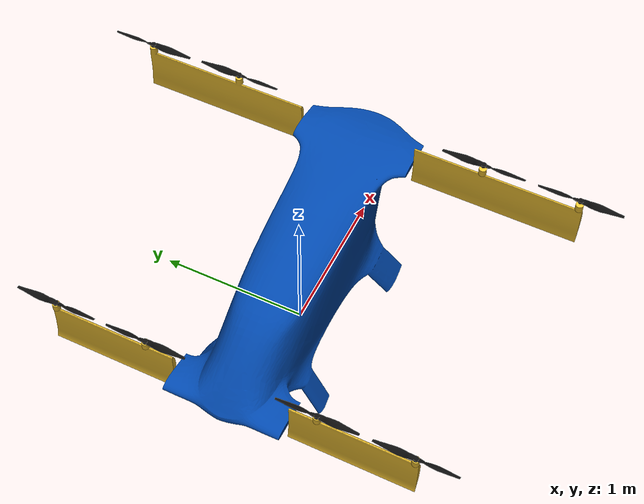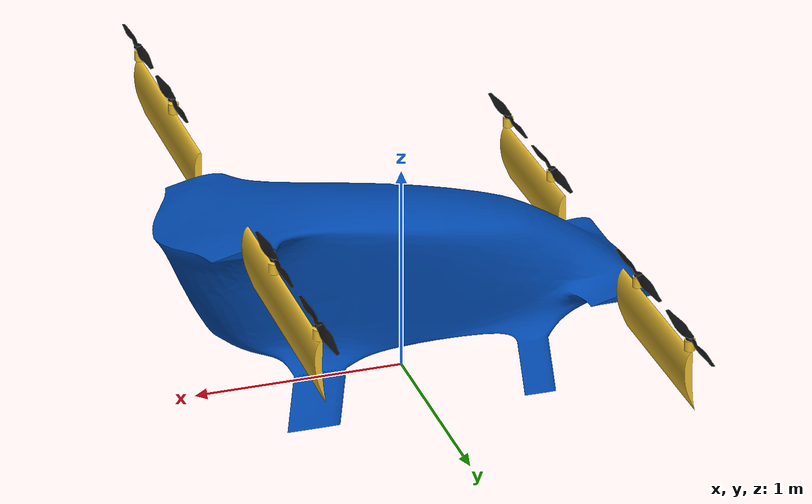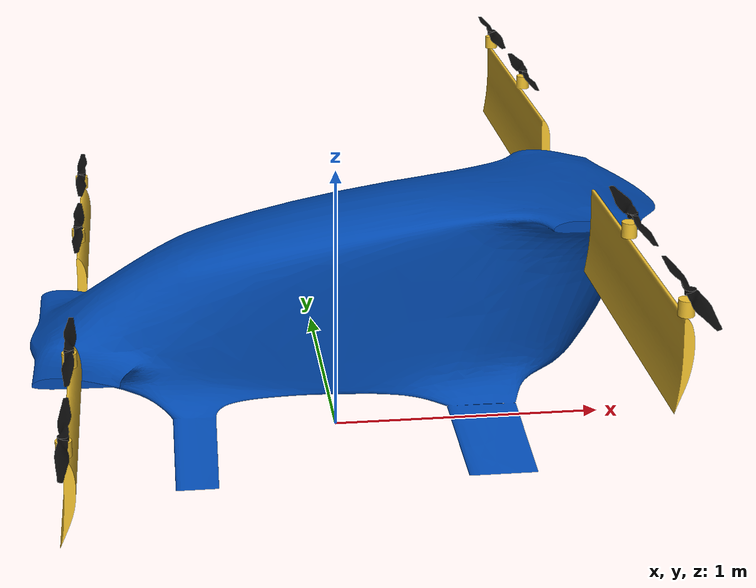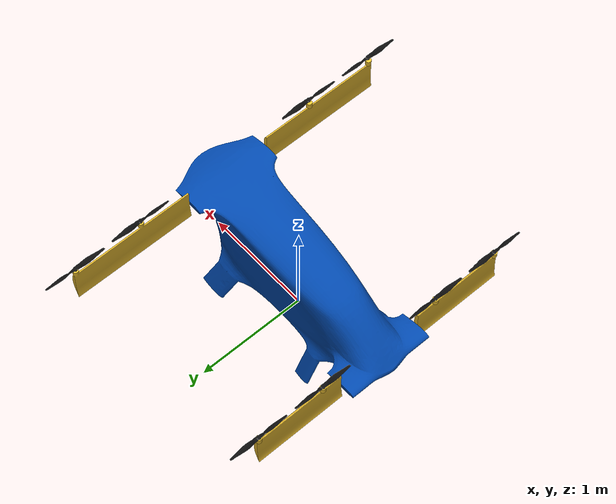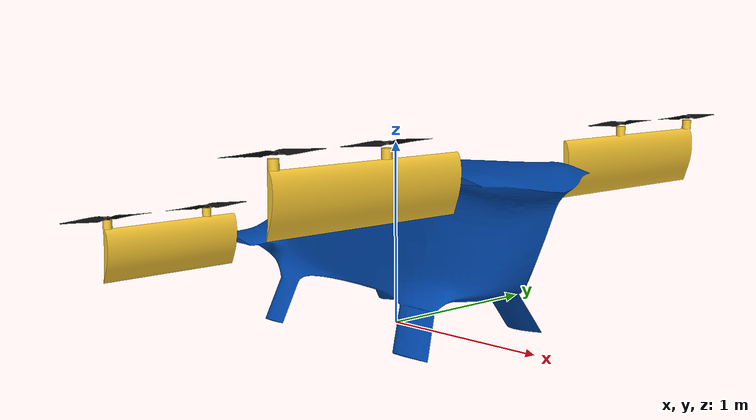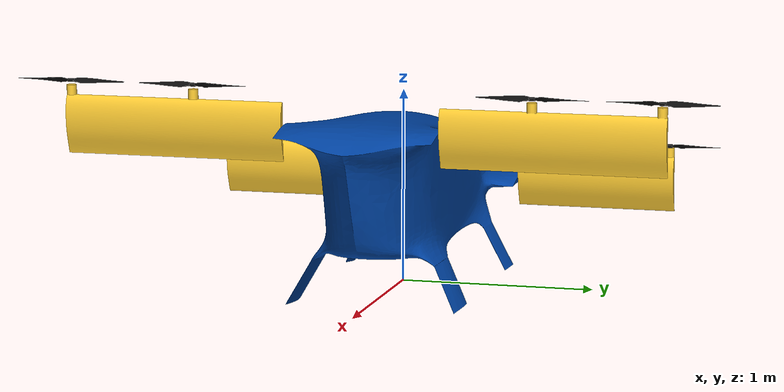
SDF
<?xml version="1.0" ?>
<sdf version="1.11">
<model name="winghead">

    <link name="chassis_1">
      <inertial>
        <pose>-0.0465 0.000148 0.547636 0 0 0</pose>
        <mass>45</mass>
        <inertia>
            <ixx>22.70</ixx>
            <ixy>0</ixy>
            <ixz>0</ixz>
            <iyy>23.12</iyy>
            <iyz>0.0</iyz>
            <izz>6.49</izz>
        </inertia>
      </inertial>
      <visual name="chassis_1__chassis_visual">
        <geometry>
          <mesh>
            <scale>0.01 0.01 0.01</scale>
            <uri>meshes/chassis_1/chassis_visual.obj</uri>
          </mesh>
        </geometry>
        <material>
          <ambient>0 0.278 0.671 1</ambient>
          <diffuse>0 0.278 0.671 1</diffuse>
          <specular>0.3 0.3 0.3 1</specular>
        </material>
      </visual>

      <collision name="chassis_1__chassis_collision">
        <pose relative_to="__model__">0.029245375363109453 -3.180395711934183e-05 0.4548654965396329 0.00046196453675312354 -1.5673525349161304 3.141592653350924</pose>
        <geometry>
          <box>
            <size>0.9631158330389892 0.9048489805843881 2.2880871478364986</size>
          </box>
        </geometry>
      </collision>
       <sensor name="air_pressure_sensor" type="air_pressure">
        <gz_frame_id>base_link</gz_frame_id>
        <always_on>1</always_on>
        <update_rate>50</update_rate>
        <air_pressure>
          <!-- Noise modeled after BMP390 -->
          <pressure>
            <noise type="gaussian">
              <mean>0</mean>
              <stddev>3</stddev>
            </noise>
          </pressure>
        </air_pressure>
      </sensor>
      <sensor name="magnetometer_sensor" type="magnetometer">
        <gz_frame_id>base_link</gz_frame_id>
        <always_on>1</always_on>
        <update_rate>100</update_rate>
        <magnetometer>
          <!-- TODO: update to fix units and coordinate system when we move past Harmonic -->
          <!-- See https://github.com/gazebosim/gz-sim/pull/2460 -->
          <!-- 3mgauss RMS: NOTE: noise is in tesla but sensor reports data in gauss -->
          <!-- Noise modeled after IIS2MDC -->
          <x>
            <noise type="gaussian">
              <stddev>0.0001</stddev>
            </noise>
          </x>
          <y>
            <noise type="gaussian">
              <stddev>0.0001</stddev>
            </noise>
          </y>
          <z>
            <noise type="gaussian">
              <stddev>0.0001</stddev>
            </noise>
          </z>
        </magnetometer>
      </sensor>
      <sensor name="imu_sensor" type="imu">
        <gz_frame_id>base_link</gz_frame_id>
        <always_on>1</always_on>
        <update_rate>250</update_rate>
        <imu>
          <angular_velocity>
            <!-- Noise modeled after IIM42653 -->
            <!-- 0.05 deg/s converted to rad/s -->
            <x>
              <noise type="gaussian">
                <mean>0.0</mean>
                <stddev>0.0008726646</stddev>
              </noise>
            </x>
            <y>
              <noise type="gaussian">
                <mean>0.0</mean>
                <stddev>0.0008726646</stddev>
              </noise>
            </y>
            <z>
              <noise type="gaussian">
                <mean>0.0</mean>
                <stddev>0.0008726646</stddev>
              </noise>
            </z>
          </angular_velocity>
          <linear_acceleration>
            <!-- Noise modeled after IIM42653 -->
            <!-- X & Y axis: 0.65 mg-rms converted to m/ss -->
            <x>
              <noise type="gaussian">
                <mean>0.0</mean>
                <stddev>0.00637</stddev>
              </noise>
            </x>
            <y>
              <noise type="gaussian">
                <mean>0.0</mean>
                <stddev>0.00637</stddev>
              </noise>
            </y>
            <!-- Z axis: 0.70 mg-rms converted to m/ss-->
            <z>
              <noise type="gaussian">
                <mean>0.0</mean>
                <stddev>0.00686</stddev>
              </noise>
            </z>
          </linear_acceleration>
        </imu>
      </sensor>
      <sensor name="navsat_sensor" type="navsat">
        <gz_frame_id>base_link</gz_frame_id>
        <always_on>1</always_on>
        <update_rate>30</update_rate>
      </sensor>
    </link>
    <link name="aft_wing_right_1">
      <pose relative_to="__model__">0.849350 -0.968215 0.918936 0.000000 1.570796 0.000000</pose>
      <inertial>
        <pose>-0.000000 0.000000 -0.000000 0.000000 0.000000 0.000000</pose>
        <mass>8.0</mass>
          <inertia>
            <ixx>0.845</ixx>
            <iyy>0.061</iyy>
            <izz>0.904</izz>
            <ixy>0.0</ixy><ixz>0.0</ixz><iyz>0.0</iyz>
          </inertia>
      </inertial>
      <visual name="aft_wing_right_1__aft_wing_visual">
        <pose>-0.828156 1.067983 -0.901632 0.0 0.0 0.0</pose>
        <geometry>
          <mesh>
            <scale>0.01 0.01 0.01</scale>
            <uri>meshes/aft_wing_right_1/aft_wing_visual.obj</uri>
          </mesh>
        </geometry>
        <material>
            <ambient>0.957 0.769 0.188 1</ambient>
            <diffuse>0.957 0.769 0.188 1</diffuse>
            <specular>0.2 0.2 0.2 1</specular>
        </material>
      </visual>
      <visual name="aft_wing_right_1__aft_wing_1_visual">
        <pose>-0.828156 1.067983 -0.901632 0.0 0.0 0.0</pose>
        <geometry>
          <mesh>
            <scale>0.01 0.01 0.01</scale>
            <uri>meshes/aft_wing_right_1/aft_wing_1_visual.obj</uri>
          </mesh>
        </geometry>
        <material>
            <ambient>0.957 0.769 0.188 1</ambient>
            <diffuse>0.957 0.769 0.188 1</diffuse>
            <specular>0.2 0.2 0.2 1</specular>
        </material>
      </visual>
      <visual name="aft_wing_right_1__aft_wing_2_visual">
        <pose>-0.828156 1.067983 -0.901632 0.0 0.0 0.0</pose>
        <geometry>
          <mesh>
            <scale>0.01 0.01 0.01</scale>
            <uri>meshes/aft_wing_right_1/aft_wing_2_visual.obj</uri>
          </mesh>
        </geometry>
        <material>
            <ambient>0.957 0.769 0.188 1</ambient>
            <diffuse>0.957 0.769 0.188 1</diffuse>
            <specular>0.2 0.2 0.2 1</specular>
        </material>
      </visual>
    </link>
    <link name="aft_wing_left_1">
      <pose relative_to="__model__">0.849350 0.968215 0.918936 0.0 1.570796 0.0</pose>
      <inertial>
        <pose>0.0 0.0 0.0 0.0 0.0 0.0</pose>
        <mass>8.0</mass>
          <inertia>
            <ixx>0.845</ixx>
            <iyy>0.061</iyy>
            <izz>0.904</izz>
            <ixy>0.0</ixy><ixz>0.0</ixz><iyz>0.0</iyz>
          </inertia>
      </inertial>
      <visual name="aft_wing_left_1__aft_wing_1_visual">
        <pose>-0.827952 -1.068215 -0.903784 0.0 0.0 0.0</pose>
        <geometry>
          <mesh>
            <scale>0.01 0.01 0.01</scale>
            <uri>meshes/aft_wing_left_1/aft_wing_1_visual.obj</uri>
          </mesh>
        </geometry>
        <material>
            <ambient>0.957 0.769 0.188 1</ambient>
            <diffuse>0.957 0.769 0.188 1</diffuse>
            <specular>0.2 0.2 0.2 1</specular>
        </material>
      </visual>
    </link>
    <link name="fore_wing_right_1">
      <pose relative_to="__model__"> -0.940443 -0.827363 0.428607 0.0 1.570796 0.0</pose>
      <inertial>
        <pose>0.000000 -0.000000 0.000000 0.000000 0.00 0.000000</pose>
        <mass>8.0</mass>
          <inertia>
            <ixx>0.483</ixx>
            <iyy>0.061</iyy>
            <izz>0.542</izz>
            <ixy>0.0</ixy>
            <ixz>0.0</ixz>
            <iyz>0.0</iyz>
          </inertia>
      </inertial>
      <visual name="fore_wing_right_1__body2_visual">
        <pose>0.979142 0.925251 -0.404756 -0.000000 0.0 0.00000</pose>
        <geometry>
          <mesh>
            <scale>0.01 0.01 0.01</scale>
            <uri>meshes/fore_wing_right_1/body2_visual.obj</uri>
          </mesh>
        </geometry>
        <material>
            <ambient>0.957 0.769 0.188 1</ambient>
            <diffuse>0.957 0.769 0.188 1</diffuse>
            <specular>0.2 0.2 0.2 1</specular>
        </material>
      </visual>
      <visual name="fore_wing_right_1__body3_visual">
        <pose>0.979142 0.925251 -0.404756 0.0 0.0 0.0</pose>
        <geometry>
          <mesh>
            <scale>0.01 0.01 0.01</scale>
            <uri>meshes/fore_wing_right_1/body3_visual.obj</uri>
          </mesh>
        </geometry>
        <material>
            <ambient>0.957 0.769 0.188 1</ambient>
            <diffuse>0.957 0.769 0.188 1</diffuse>
            <specular>0.2 0.2 0.2 1</specular>
        </material>
      </visual>
      <visual name="fore_wing_right_1__body4_visual">
        <pose>0.979142 0.925251 -0.404756 0.0 0.0 0.0</pose>
        <geometry>
          <mesh>
            <scale>0.01 0.01 0.01</scale>
            <uri>meshes/fore_wing_right_1/body4_visual.obj</uri>
          </mesh>
        </geometry>
        <material>
            <ambient>0.957 0.769 0.188 1</ambient>
            <diffuse>0.957 0.769 0.188 1</diffuse>
            <specular>0.2 0.2 0.2 1</specular>
        </material>
      </visual>
    </link>
    <link name="fore_wing_left_1">
      <pose relative_to="__model__">-0.936209 0.827072 0.428597 0.000000 1.570796 0.000000</pose>
      <inertial>
        <pose> 0.000000 -0.000000 -0.000000 0.000000 0.000000 0.000000</pose>
        <mass>8.0</mass>
        <inertia>
          <ixx>0.483</ixx>
          <iyy>0.061</iyy>
          <izz>0.542</izz>
          <ixy>0.0</ixy>
          <ixz>0.0</ixz>
          <iyz>0.0</iyz>
        </inertia>
      </inertial>
      <visual name="fore_wing_left_1__body2_visual">
        <pose>0.969158 -0.929680 -0.404755 0.0 0.0 0.0</pose>
        <geometry>
          <mesh>
            <scale>0.01 0.01 0.01</scale>
            <uri>meshes/fore_wing_left_1/body2_visual.obj</uri>
          </mesh>
        </geometry>
        <material>
            <ambient>0.957 0.769 0.188 1</ambient>
            <diffuse>0.957 0.769 0.188 1</diffuse>
            <specular>0.2 0.2 0.2 1</specular>
        </material>
      </visual>
      <visual name="fore_wing_left_1__body3_visual">
        <pose>0.969158 -0.929680 -0.404755 0.0 0.0 0.</pose>
        <geometry>
          <mesh>
            <scale>0.01 0.01 0.01</scale>
            <uri>meshes/fore_wing_left_1/body3_visual.obj</uri>
          </mesh>
        </geometry>
        <material>
            <ambient>0.957 0.769 0.188 1</ambient>
            <diffuse>0.957 0.769 0.188 1</diffuse>
            <specular>0.2 0.2 0.2 1</specular>
        </material>
      </visual>
      <visual name="fore_wing_left_1__body4_visual">
        <pose>0.969158 -0.929680 -0.404755 0.0 0.0 0.</pose>
        <geometry>
          <mesh>
            <scale>0.01 0.01 0.01</scale>
            <uri>meshes/fore_wing_left_1/body4_visual.obj</uri>
          </mesh>
        </geometry>
        <material>
            <ambient>0.957 0.769 0.188 1</ambient>
            <diffuse>0.957 0.769 0.188 1</diffuse>
            <specular>0.2 0.2 0.2 1</specular>
        </material>
      </visual>
    </link>
    <link name="proptest_left_fore_2_1_1">
      <pose relative_to="__model__">-0.942911 1.225140 0.609356 0.000000 0.000000 0.000000</pose>
      <inertial>
        <pose>0.000000 -0f.000000 -0.000000 0.000000 0.000000 0.000000</pose>
         <mass>0.07616409295472076</mass>
        <inertia>
          <ixx>0.0009491392005980537</ixx>
          <ixy>-1.2845550592853472e-05</ixy>
          <ixz>-2.2498057898612256e-07</ixz>
          <iyy>7.257342840155667e-06</iyy>
          <iyz>-7.316795649081609e-07</iyz>
          <izz>0.0009530803547643379</izz>
        </inertia>
      </inertial>
      <visual name="proptest_left_fore_2_1_1__proptest_22x13_2ccw_2_visual">
        <pose>0.943254 -1.229114 -0.744824 0.000000 0.000000 0.000000</pose>
        <geometry>
          <mesh>
            <scale>0.01 0.01 0.01</scale>
            <uri>meshes/proptest_left_fore_2_1_1/proptest_22x13_2ccw_2_visual.obj</uri>
          </mesh>
        </geometry>
        <material>
            <ambient>0.05 0.05 0.05 1</ambient>
            <diffuse>0.05 0.05 0.05 1</diffuse>
            <specular>0.1 0.1 0.1 1</specular>
        </material>
      </visual>
    </link>
    <link name="proptest_right_fore_2_1_1">
      <pose relative_to="__model__">-0.947145 -1.226365 0.608882 0.000000 0.000000 0.00000</pose>
      <inertial>
        <pose>-0.000000 0.000000 -0.000000 0.000000 0.000000 0.0000</pose>
      <mass>0.07616409295472076</mass>
        <inertia>
          <ixx>0.0009491392005980537</ixx>
          <ixy>-1.2845550592853472e-05</ixy>
          <ixz>-2.2498057898612256e-07</ixz>
          <iyy>7.257342840155667e-06</iyy>
          <iyz>-7.316795649081609e-07</iyz>
          <izz>0.0009530803547643379</izz>
        </inertia>
      </inertial>
      <visual name="proptest_right_fore_2_1_1__proptest_22x13_2ccw_2_1_visual">
        <pose>0.968253 1.320886 -0.744824 0.000000 0.000000 0.00000</pose>
        <geometry>
          <mesh>
            <scale>0.01 0.01 0.01</scale>
            <uri>meshes/proptest_right_fore_2_1_1/proptest_22x13_2ccw_2_1_visual.obj</uri>
          </mesh>
        </geometry>
        <material>
            <ambient>0.05 0.05 0.05 1</ambient>
            <diffuse>0.05 0.05 0.05 1</diffuse>
            <specular>0.1 0.1 0.1 1</specular>
        </material>
      </visual>
    </link>
    <link name="proptest_right_aft_1_1_1">
      <pose relative_to="__model__">0.853757 -0.859253 1.111223 0.0 0 0.0</pose>
      <inertial>
        <pose>0.0 0.0 0.0 0.0 0.0 0.0</pose>
        <mass>0.07616409295472076</mass>
        <inertia>
          <ixx>0.0009491392005980537</ixx>
          <ixy>-1.2845550592853472e-05</ixy>
          <ixz>-2.2498057898612256e-07</ixz>
          <iyy>7.257342840155667e-06</iyy>
          <iyz>-7.316795649081609e-07</iyz>
          <izz>0.0009530803547643379</izz>
        </inertia>
      </inertial>
      <visual name="proptest_right_aft_1_1_1__proptest_22x13_2ccw_2_1_1_visual">
        <pose>-0.709803 0.853122 -1.287205 0.0 -0.056811 0.0</pose>
        <geometry>
          <mesh>
            <scale>0.01 0.01 0.01</scale>
            <uri>meshes/proptest_right_aft_1_1_1/proptest_22x13_2ccw_2_1_1_visual.obj</uri>
          </mesh>
        </geometry>
        <material>
            <ambient>0.05 0.05 0.05 1</ambient>
            <diffuse>0.05 0.05 0.05 1</diffuse>
            <specular>0.1 0.1 0.1 1</specular>
        </material>
      </visual>
    </link>
    <link name="proptest_left_aft_1_1_1">
      <pose relative_to="__model__">0.843757 0.859253 1.111223 0.0 -0.0 0.0</pose>
      <inertial>
        <pose>0.01 0.004 0 0 0 0</pose>
        <mass>0.07616410250099517</mass>
        <inertia>
          <ixx>0.000949126615514384</ixx>
          <ixy>-1.2866371675419874e-05</ixy>
          <ixz>-1.0831993635385118e-10</ixz>
          <iyy>7.257343861755139e-06</iyy>
          <iyz>-1.119173462238443e-09</iyz>
          <izz>0.0009530933730664132</izz>
        </inertia>
      </inertial>
      <visual name="proptest_left_aft_1_1_1__proptest_22x13_2ccw_2_1_1_1_visual">
        <pose>-0.921868 -0.844357 -1.252513 0.0 0.0 0.0</pose>
        <geometry>
          <mesh>
            <scale>0.01 0.01 0.01</scale>
            <uri>meshes/proptest_left_aft_1_1_1/proptest_22x13_2ccw_2_1_1_1_visual.obj</uri>
          </mesh>
        </geometry>
        <material>
          <ambient>0.05 0.05 0.05 1</ambient>
          <diffuse>0.05 0.05 0.05 1</diffuse>
          <specular>0.1 0.1 0.1 1</specular>
        </material>
      </visual>
      <collision name="proptest_left_aft_1_1_1__proptest_22x13_2ccw_2_1_1_1_collision">
        <pose relative_to="__model__">0.8536322375067447 0.8617785448258454 1.1020524138853787 -2.9024227822976547 -1.5704523384171136 0.2390591864704685</pose>
        <geometry>
          <box>
            <size>0.027037580687858026 0.5588216675034943 0.04236600770653965</size>
          </box>
        </geometry>
      </collision>
    </link>
    <link name="proptest_left_fore_1_1_1">
      <pose relative_to="__model__">-0.942912 0.585129 0.609376 0.000000 0.000000 0.000000</pose>
      <inertial>
        <pose> 0 0 0 0 0 0</pose>
 <mass>0.07616409295472076</mass>
        <inertia>
          <ixx>0.0009491392005980537</ixx>
          <ixy>-1.2845550592853472e-05</ixy>
          <ixz>-2.2498057898612256e-07</ixz>
          <iyy>7.257342840155667e-06</iyy>
          <iyz>-7.316795649081609e-07</iyz>
          <izz>0.0009530803547643379</izz>
        </inertia>
      </inertial>
      <visual name="proptest_left_fore_1_1_1__proptest_22x13_2_8_visual">
        <pose>1.019290 -0.602797 -0.935177 0.000000 0.000000 0.000000</pose>
        <geometry>
          <mesh>
            <scale>0.01 0.01 0.01</scale>
            <uri>meshes/proptest_left_fore_1_1_1/proptest_22x13_2_8_visual.obj</uri>
          </mesh>
        </geometry>
        <material>
           <ambient>0.05 0.05 0.05 1</ambient>
           <diffuse>0.05 0.05 0.05 1</diffuse>
           <specular>0.1 0.1 0.1 1</specular>
        </material>
      </visual>
    </link>
    <link name="proptest_right_fore_1_1_1">
      <pose relative_to="__model__">-0.947146 -0.586374 0.608902 0.000000 0.000000 0.000000</pose>
      <inertial>
        <pose>-0.000000 -0.000001 0.000000 0.000000 0.000000 0.000000</pose>
   <mass>0.07616409295472076</mass>
        <inertia>
          <ixx>0.0009491392005980537</ixx>
          <ixy>-1.2845550592853472e-05</ixy>
          <ixz>-2.2498057898612256e-07</ixz>
          <iyy>7.257342840155667e-06</iyy>
          <iyz>-7.316795649081609e-07</iyz>
          <izz>0.0009530803547643379</izz>
        </inertia>
      </inertial>
      <visual name="proptest_right_fore_1_1_1__proptest_22x13_2_8_1_visual">
        <pose>1.019290 0.797201 -0.935177 -0.000000 0.000000 -0.000000</pose>
        <geometry>
          <mesh>
            <scale>0.01 0.01 0.01</scale>
            <uri>meshes/proptest_right_fore_1_1_1/proptest_22x13_2_8_1_visual.obj</uri>
          </mesh>
        </geometry>
        <material>
          <ambient>0.05 0.05 0.05 1</ambient>
          <diffuse>0.05 0.05 0.05 1</diffuse>
          <specular>0.1 0.1 0.1 1</specular>
        </material>
      </visual>
    </link>
    <link name="proptest_right_aft_2_1_1">
      <pose relative_to="__model__">0.853757 -1.499263 1.111223 0.000000 0.000000 0.000000</pose>
      <inertial>
        <pose>-0.000002 -0.000000 -0.000000 0.000000 0.000000 0.000000</pose>
        <mass>0.07616409295472076</mass>
        <inertia>
          <ixx>0.0009491392005980537</ixx>
          <ixy>-1.2845550592853472e-05</ixy>
          <ixz>-2.2498057898612256e-07</ixz>
          <iyy>7.257342840155667e-06</iyy>
          <iyz>-7.316795649081609e-07</iyz>
          <izz>0.0009530803547643379</izz>
        </inertia>
      </inertial>
      <visual name="proptest_right_aft_2_1_1__proptest_22x13_2_8_1_1_visual">
        <pose>-0.810860 1.487202 -1.253240 0.000000 -0.056811 0.000000</pose>
        <geometry>
          <mesh>
            <scale>0.01 0.01 0.01</scale>
            <uri>meshes/proptest_right_aft_2_1_1/proptest_22x13_2_8_1_1_visual.obj</uri>
          </mesh>
        </geometry>
        <material>
            <ambient>0.05 0.05 0.05 1</ambient>
            <diffuse>0.05 0.05 0.05 1</diffuse>
            <specular>0.1 0.1 0.1 1</specular>
        </material>
      </visual>
    </link>
    <link name="proptest_left_aft_2_2_1">
      <pose relative_to="__model__">0.845031 1.499996 1.103548 0.000000 0.000000 0.000000</pose>
      <inertial>
        <pose>0.000000 -0.000000 -0.000000 0.000000 0.000000 0.000000</pose>
        <mass>0.07616409295472076</mass>
        <inertia>
          <ixx>0.0009491392005980537</ixx>
          <ixy>-1.2845550592853472e-05</ixy>
          <ixz>-2.2498057898612256e-07</ixz>
          <iyy>7.257342840155667e-06</iyy>
          <iyz>-7.316795649081609e-07</iyz>
          <izz>0.0009530803547643379</izz>
        </inertia>
      </inertial>
      <visual name="proptest_left_aft_2_2_1__proptest_22x13_2_8_1_1_1_visual">
        <pose>-0.880710 -1.412798 -1.205178 0.000000 0.000000 0.000000</pose>
        <geometry>
          <mesh>
            <scale>0.01 0.01 0.01</scale>
            <uri>meshes/proptest_left_aft_2_2_1/proptest_22x13_2_8_1_1_1_visual.obj</uri>
          </mesh>
        </geometry>
        <material>
          <ambient>0.05 0.05 0.05 1</ambient>
          <diffuse>0.05 0.05 0.05 1</diffuse>
          <specular>0.1 0.1 0.1 1</specular>
        </material>
      </visual>
    </link>
    <!-- props joints-->
    <joint name="revolute_0" type="revolute">
      <pose relative_to="__model__">-0.9429112498396433 1.2251320539783144 0.6004677149100498 0.0 -0.0 0.0</pose>
      <parent>fore_wing_left_1</parent>
      <child>proptest_left_fore_2_1_1</child>
      <axis>
        <xyz expressed_in="__model__">0 0.0 1.0</xyz>
      </axis>
    </joint>
    <joint name="revolute_1" type="revolute">
      <pose relative_to="__model__">-0.9429112498396433 0.585132053978314 0.60046771491005 0.0 -0.0 0.0</pose>
      <parent>fore_wing_left_1</parent>
      <child>proptest_left_fore_1_1_1</child>
      <axis>
        <xyz expressed_in="__model__">0 0.0 1.0</xyz>
      </axis>
    </joint>
    <joint name="revolute_2" type="revolute">
      <pose relative_to="__model__">-0.9471456782454077 -0.5863726533581086 0.5999937502188877 0.0 -0.0 0.0</pose>
      <parent>fore_wing_right_1</parent>
      <child>proptest_right_fore_1_1_1</child>
      <axis>
        <xyz expressed_in="__model__">0 0.0 1.0</xyz>
      </axis>
    </joint>
    <joint name="revolute_3" type="revolute">
      <pose relative_to="__model__">-0.9471456782454077 -1.226372653358109  0.5999937502188873 0.0 -0.0 0.0</pose>
      <parent>fore_wing_right_1</parent>
      <child>proptest_right_fore_2_1_1</child>
      <axis>
        <xyz expressed_in="__model__">-0 0 1.0</xyz>
      </axis>
    </joint>
    <joint name="revolute_4" type="revolute">
      <pose relative_to="__model__">0.8450319137573244 1.4999987030029296 1.0946388549804684 0.0 -0.0 0.0</pose>
      <parent>aft_wing_left_1</parent>
      <child>proptest_left_aft_2_2_1</child>
      <axis>
        <xyz expressed_in="__model__">0 0.0 1.0</xyz>
      </axis>
    </joint>
    <joint name="revolute_5" type="revolute">
      <pose relative_to="__model__">0.8536352005004884 0.8617668151855468 1.0946465225219726 0.0 -0.0 0.0</pose>
      <parent>aft_wing_left_1</parent>
      <child>proptest_left_aft_1_1_1</child>
      <axis>
        <xyz expressed_in="__model__">0 0.0 1.0</xyz>
      </axis>
    </joint>
    <joint name="revolute_6" type="revolute">
      <pose relative_to="__model__">0.8542613274525557 -0.8592604173351595 1.1023286817692322 0.0 -0.0 0.0</pose>
      <parent>aft_wing_right_1</parent>
      <child>proptest_right_aft_1_1_1</child>
      <axis>
        <xyz expressed_in="__model__">-0 0 1</xyz>
      </axis>
    </joint>
    <joint name="revolute_7" type="revolute">
      <pose relative_to="__model__">0.8542613274525556 -1.4992604173351598 1.1023286817692324 0.0 -0.0 0.0</pose>
      <parent>aft_wing_right_1</parent>
      <child>proptest_right_aft_2_1_1</child>
      <axis>
        <xyz expressed_in="__model__">0 0.0 1</xyz>
      </axis>
    </joint>

    <!-- wing joints-->
    <joint name="joint_fore_wing_right_1" type="revolute">
      <pose relative_to="__model__">-0.9352297592163086 -0.3998827362060547 0.4000260353088379 0.0 -0.0 0.0</pose>
      <parent>chassis_1</parent>
      <child>fore_wing_right_1</child>
      <axis>
        <xyz expressed_in="__model__">0.0 -1.0 0.0</xyz>
        <limit>
          <lower>0</lower>    <!--negative infinity-->
          <upper>1.59</upper>     <!--positive infinity-->
          <effort>1000</effort>
          <velocity>10</velocity>
        </limit>
      </axis>
    </joint>
    <joint name="joint_fore_wing_left_1" type="revolute">
      <pose relative_to="__model__">-0.9352297592163086 0.3998827362060547 0.4000260353088379 0.0 -0.0 0.0</pose>
      <parent>chassis_1</parent>
      <child>fore_wing_left_1</child>
      <axis>
        <xyz expressed_in="__model__">0.0 -1.0 0.0</xyz>
        <limit>
          <lower>0</lower>    <!--negative infinity-->
          <upper>1.59</upper>     <!--positive infinity-->
          <effort>1000</effort>
          <velocity>10</velocity>
        </limit>
      </axis>
    </joint>
      <joint name="joint_aft_wing_right_1" type="revolute">
      <pose relative_to="__model__">0.8332691574096679 -0.3998827362060547 0.8997934341430665 0.0 -0.0 0.0</pose>
      <parent>chassis_1</parent>
      <child>aft_wing_right_1</child>
      <axis>
        <xyz expressed_in="__model__">0.0 -1.0 0.0</xyz>
        <limit>
          <lower>0</lower>    <!--negative infinity-->
          <upper>1.59</upper>     <!--positive infinity-->
          <effort>1000</effort>
          <velocity>10</velocity>
        </limit>
      </axis>
    </joint>
    <joint name="joint_aft_wing_left_1" type="revolute">
      <pose relative_to="__model__">0.8332691574096679 0.3998827362060547 0.8997934341430665 0.0 -0.0 0.0</pose>
      <parent>chassis_1</parent>
      <child>aft_wing_left_1</child>
      <axis>
        <xyz expressed_in="__model__">0.0 -1.0 0.0</xyz>
        <limit>
          <lower>0</lower>    <!--negative infinity-->
          <upper>1.59</upper>     <!--positive infinity-->
          <effort>1000</effort>
          <velocity>10</velocity>
        </limit>
      </axis>
    </joint>
    <!-- wing plugin-->
    <plugin filename="gz-sim-joint-position-controller-system"
            name="gz::sim::systems::JointPositionController">
      <joint_name>joint_aft_wing_left_1</joint_name>
      <topic>/model/winghead/fore_wing/cmd_pos</topic>
      <p_gain>320</p_gain>
      <i_gain>20</i_gain>
      <d_gain>5.5</d_gain>
    </plugin>
    <plugin filename="gz-sim-joint-position-controller-system"
            name="gz::sim::systems::JointPositionController">
      <joint_name>joint_aft_wing_right_1</joint_name>
      <topic>/model/winghead/fore_wing/cmd_pos</topic>
      <p_gain>320</p_gain>
      <i_gain>20</i_gain>
      <d_gain>5.5</d_gain>
    </plugin>
    <plugin filename="gz-sim-joint-position-controller-system"
            name="gz::sim::systems::JointPositionController">
      <joint_name>joint_fore_wing_left_1</joint_name>
      <topic>/model/winghead/fore_wing/cmd_pos</topic>
      <p_gain>330</p_gain>
      <i_gain>20</i_gain>
      <d_gain>5.5</d_gain>
    </plugin>
    <plugin filename="gz-sim-joint-position-controller-system"
            name="gz::sim::systems::JointPositionController">
      <joint_name>joint_fore_wing_right_1</joint_name>
      <topic>/model/winghead/fore_wing/cmd_pos</topic>
      <p_gain>330</p_gain>
      <i_gain>20</i_gain>
      <d_gain>5.5</d_gain>
    </plugin>
    <!-- multicopter plugin -->
    <plugin filename="gz-sim-multicopter-motor-model-system" name="gz::sim::systems::MulticopterMotorModel">
      <jointName>revolute_0</jointName>
      <linkName>proptest_left_fore_2_1_1</linkName>
      <turningDirection>cw</turningDirection>
      <timeConstantUp>0.0125</timeConstantUp>
      <timeConstantDown>0.025</timeConstantDown>
      <maxRotVelocity>2000</maxRotVelocity>
      <motorConstant>8.5e-05</motorConstant>
      <momentConstant>0.06</momentConstant>
      <commandSubTopic>command/motor_speed</commandSubTopic>
      <motorSpeedPubTopic>motor_speed/0</motorSpeedPubTopic>
      <actuator_number>0</actuator_number>
      <rotorDragCoefficient>8.06428e-05</rotorDragCoefficient>
      <rollingMomentCoefficient>1e-06</rollingMomentCoefficient>
      <rotorVelocitySlowdownSim>10</rotorVelocitySlowdownSim>
      <robotNamespace>winghead_gz</robotNamespace>
    </plugin>
    <plugin filename="gz-sim-multicopter-motor-model-system" name="gz::sim::systems::MulticopterMotorModel">
      <jointName>revolute_1</jointName>
      <linkName>proptest_left_fore_1_1_1</linkName>
      <turningDirection>ccw</turningDirection>
      <timeConstantUp>0.0125</timeConstantUp>
      <timeConstantDown>0.025</timeConstantDown>
      <maxRotVelocity>2000</maxRotVelocity>
      <motorConstant>8.5e-05</motorConstant>
      <momentConstant>0.06</momentConstant>
      <commandSubTopic>command/motor_speed</commandSubTopic>
      <actuator_number>1</actuator_number>
      <rotorDragCoefficient>8.06428e-05</rotorDragCoefficient>
      <rollingMomentCoefficient>1e-06</rollingMomentCoefficient>
      <rotorVelocitySlowdownSim>10</rotorVelocitySlowdownSim>
      <robotNamespace>winghead_gz</robotNamespace>
    </plugin>
    <plugin filename="gz-sim-multicopter-motor-model-system" name="gz::sim::systems::MulticopterMotorModel">
      <jointName>revolute_2</jointName>
      <linkName>proptest_right_fore_1_1_1</linkName>
      <turningDirection>ccw</turningDirection>
      <timeConstantUp>0.0125</timeConstantUp>
      <timeConstantDown>0.025</timeConstantDown>
      <maxRotVelocity>2000</maxRotVelocity>
      <motorConstant>8.5e-05</motorConstant>
      <momentConstant>0.06</momentConstant>
      <commandSubTopic>command/motor_speed</commandSubTopic>
      <actuator_number>2</actuator_number>
      <rotorDragCoefficient>8.06428e-05</rotorDragCoefficient>
      <rollingMomentCoefficient>1e-06</rollingMomentCoefficient>
      <rotorVelocitySlowdownSim>10</rotorVelocitySlowdownSim>
      <robotNamespace>winghead_gz</robotNamespace>
    </plugin>
    <plugin filename="gz-sim-multicopter-motor-model-system" name="gz::sim::systems::MulticopterMotorModel">
      <jointName>revolute_3</jointName>
      <linkName>proptest_right_fore_2_1_1</linkName>
      <turningDirection>cw</turningDirection>
      <timeConstantUp>0.0125</timeConstantUp>
      <timeConstantDown>0.025</timeConstantDown>
      <maxRotVelocity>2000</maxRotVelocity>
      <motorConstant>8.5e-05</motorConstant>
      <momentConstant>0.06</momentConstant>
      <commandSubTopic>command/motor_speed</commandSubTopic>
      <actuator_number>3</actuator_number>
      <rotorDragCoefficient>8.06428e-05</rotorDragCoefficient>
      <rollingMomentCoefficient>1e-06</rollingMomentCoefficient>
      <rotorVelocitySlowdownSim>10</rotorVelocitySlowdownSim>
      <robotNamespace>winghead_gz</robotNamespace>
    </plugin>
    <plugin filename="gz-sim-multicopter-motor-model-system" name="gz::sim::systems::MulticopterMotorModel">
      <jointName>revolute_4</jointName>
      <linkName>proptest_left_aft_2_2_1</linkName>
      <turningDirection>ccw</turningDirection>
      <timeConstantUp>0.0125</timeConstantUp>
      <timeConstantDown>0.025</timeConstantDown>
      <maxRotVelocity>2000</maxRotVelocity>
      <motorConstant>8.5e-05</motorConstant>
      <momentConstant>0.06</momentConstant>
      <commandSubTopic>command/motor_speed</commandSubTopic>
      <actuator_number>4</actuator_number>
      <rotorDragCoefficient>8.06428e-05</rotorDragCoefficient>
      <rollingMomentCoefficient>1e-06</rollingMomentCoefficient>
      <rotorVelocitySlowdownSim>10</rotorVelocitySlowdownSim>
      <robotNamespace>winghead_gz</robotNamespace>
    </plugin>
    <plugin filename="gz-sim-multicopter-motor-model-system" name="gz::sim::systems::MulticopterMotorModel">
      <jointName>revolute_5</jointName>
      <linkName>proptest_left_aft_1_1_1</linkName>
      <turningDirection>cw</turningDirection>
      <timeConstantUp>0.0125</timeConstantUp>
      <timeConstantDown>0.025</timeConstantDown>
      <maxRotVelocity>2000</maxRotVelocity>
      <motorConstant>8.5e-05</motorConstant>
      <momentConstant>0.06</momentConstant>
      <commandSubTopic>command/motor_speed</commandSubTopic>
      <actuator_number>5</actuator_number>
      <rotorDragCoefficient>8.06428e-05</rotorDragCoefficient>
      <rollingMomentCoefficient>1e-06</rollingMomentCoefficient>
      <rotorVelocitySlowdownSim>10</rotorVelocitySlowdownSim>
      <robotNamespace>winghead_gz</robotNamespace>
    </plugin>
    <plugin filename="gz-sim-multicopter-motor-model-system" name="gz::sim::systems::MulticopterMotorModel">
      <jointName>revolute_6</jointName>
      <linkName>proptest_right_aft_1_1_1</linkName>
      <turningDirection>cw</turningDirection>
      <timeConstantUp>0.0125</timeConstantUp>
      <timeConstantDown>0.025</timeConstantDown>
      <maxRotVelocity>2000</maxRotVelocity>
      <motorConstant>8.5e-05</motorConstant>
      <momentConstant>0.06</momentConstant>
      <commandSubTopic>command/motor_speed</commandSubTopic>
      <actuator_number>6</actuator_number>
      <rotorDragCoefficient>8.06428e-05</rotorDragCoefficient>
      <rollingMomentCoefficient>1e-06</rollingMomentCoefficient>
      <rotorVelocitySlowdownSim>10</rotorVelocitySlowdownSim>
      <robotNamespace>winghead_gz</robotNamespace>
    </plugin>
    <plugin filename="gz-sim-multicopter-motor-model-system" name="gz::sim::systems::MulticopterMotorModel">
      <jointName>revolute_7</jointName>
      <linkName>proptest_right_aft_2_1_1</linkName>
      <turningDirection>ccw</turningDirection>
      <timeConstantUp>0.0125</timeConstantUp>
      <timeConstantDown>0.025</timeConstantDown>
      <maxRotVelocity>2000</maxRotVelocity>
      <motorConstant>8.5e-05</motorConstant>
      <momentConstant>0.06</momentConstant>
      <commandSubTopic>command/motor_speed</commandSubTopic>
      <actuator_number>7</actuator_number>
      <rotorDragCoefficient>8.06428e-05</rotorDragCoefficient>
      <rollingMomentCoefficient>1e-06</rollingMomentCoefficient>
      <rotorVelocitySlowdownSim>10</rotorVelocitySlowdownSim>
      <robotNamespace>winghead_gz</robotNamespace>
    </plugin>
      <plugin filename="gz-sim-joint-state-publisher-system"
          name="gz::sim::systems::JointStatePublisher"/>
</model>

</sdf>
